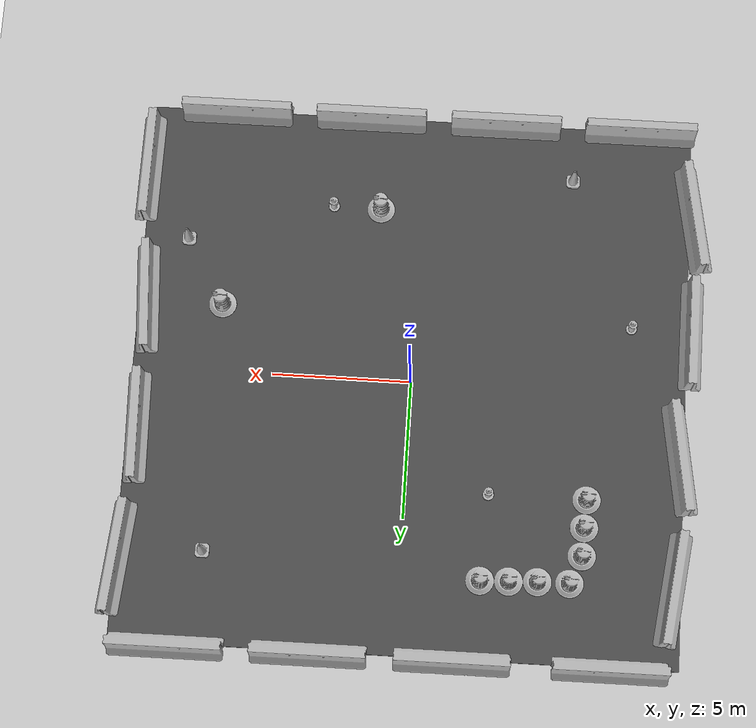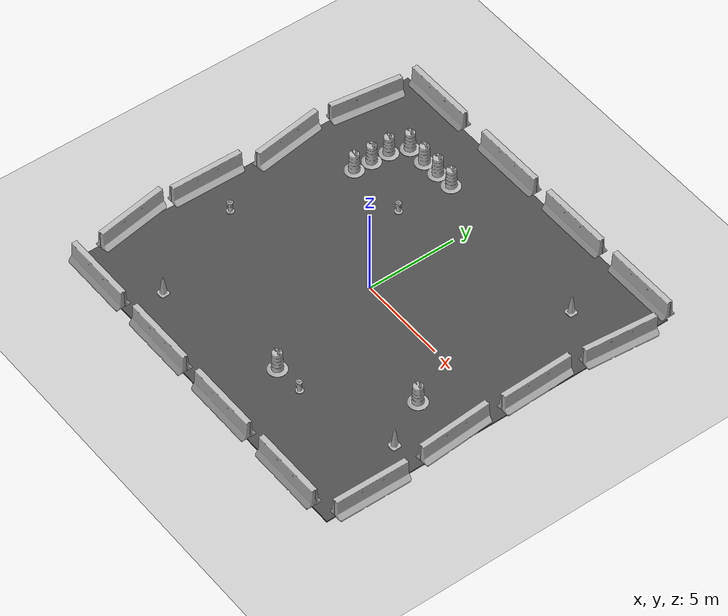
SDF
<sdf version="1.6">
 <world name="default">
  <light name="sun" type="directional">
   <pose>0 0 10 0 -0 0</pose>
   <diffuse>0.8 0.8 0.8 1</diffuse>
   <specular>0.2 0.2 0.2 1</specular>
   <attenuation>
    <range>1000</range>
    <constant>0.9</constant>
    <linear>0.01</linear>
    <quadratic>0.001</quadratic>
   </attenuation>
   <direction>-0.5 0.1 -0.9</direction>
  </light>
  <model name="ground_plane">
   <static>1</static>
   <link name="link">
    <collision name="collision">
     <geometry><plane><normal>0 0 1</normal><size>100 100</size></plane></geometry>
     <surface><friction><ode><mu>100</mu><mu2>50</mu2></ode></friction></surface>
    </collision>
    <visual name="visual">
     <cast_shadows>0</cast_shadows>
     <geometry><plane><normal>0 0 1</normal><size>100 100</size></plane></geometry>
     <material>
      <script><uri>file://media/materials/scripts/gazebo.material</uri><name>Gazebo/Grey</name></script>
     </material>
    </visual>
    <velocity_decay><linear>0</linear><angular>0</angular></velocity_decay>
   </link>
  </model>
  <physics name="default_physics" default="0" type="ode">
   <max_step_size>0.01</max_step_size>
   <real_time_factor>1</real_time_factor>
   <real_time_update_rate>100</real_time_update_rate>
  </physics>
  <scene><ambient>0.4 0.4 0.4 1</ambient><background>0.7 0.7 0.7 1</background><shadows>1</shadows></scene>
  <model name="jersey_barrier">
   <static>1</static>
   <link name="link">
    <visual name="visual">
     <geometry><mesh><uri>model://jersey_barrier/meshes/jersey_barrier.dae</uri></mesh></geometry>
    </visual>
    <collision name="upright">
     <pose>0 0 0.5715 0 -0 0</pose>
     <geometry><box><size>4.06542 0.3063 1.143</size></box></geometry>
    </collision>
    <collision name="base">
     <pose>0 0 0.032258 0 -0 0</pose>
     <geometry><box><size>4.06542 0.8107 0.064516</size></box></geometry>
    </collision>
    <collision name="base2">
     <pose>0 0 0.1 0 -0 0</pose>
     <geometry><box><size>4.06542 0.65 0.1</size></box></geometry>
    </collision>
    <collision name="base3">
     <pose>0 0 0.2 0 -0 0</pose>
     <geometry><box><size>4.06542 0.5 0.1</size></box></geometry>
    </collision>
    <collision name="left-angle">
     <pose>0 -0.224 0.2401 0.9 -0 0</pose>
     <geometry><box><size>4.06542 0.5 0.064516</size></box></geometry>
    </collision>
    <collision name="right-angle">
     <pose>0 0.224 0.2401 -0.9 0 0</pose>
     <geometry><box><size>4.06542 0.5 0.064516</size></box></geometry>
    </collision>
    <velocity_decay><linear>0</linear><angular>0</angular></velocity_decay>
   </link>
   <pose>-8 -10 0 0 -0 0</pose>
  </model>
  <model name="jersey_barrier_0">
   <static>1</static>
   <link name="link">
    <visual name="visual">
     <geometry><mesh><uri>model://jersey_barrier/meshes/jersey_barrier.dae</uri></mesh></geometry>
    </visual>
    <collision name="upright">
     <pose>0 0 0.5715 0 -0 0</pose>
     <geometry><box><size>4.06542 0.3063 1.143</size></box></geometry>
    </collision>
    <collision name="base">
     <pose>0 0 0.032258 0 -0 0</pose>
     <geometry><box><size>4.06542 0.8107 0.064516</size></box></geometry>
    </collision>
    <collision name="base2">
     <pose>0 0 0.1 0 -0 0</pose>
     <geometry><box><size>4.06542 0.65 0.1</size></box></geometry>
    </collision>
    <collision name="base3">
     <pose>0 0 0.2 0 -0 0</pose>
     <geometry><box><size>4.06542 0.5 0.1</size></box></geometry>
    </collision>
    <collision name="left-angle">
     <pose>0 -0.224 0.2401 0.9 -0 0</pose>
     <geometry><box><size>4.06542 0.5 0.064516</size></box></geometry>
    </collision>
    <collision name="right-angle">
     <pose>0 0.224 0.2401 -0.9 0 0</pose>
     <geometry><box><size>4.06542 0.5 0.064516</size></box></geometry>
    </collision>
    <velocity_decay><linear>0</linear><angular>0</angular></velocity_decay>
   </link>
   <pose>-3 -10 0 0 -0 0</pose>
  </model>
  <model name="jersey_barrier_1">
   <static>1</static>
   <link name="link">
    <visual name="visual">
     <geometry><mesh><uri>model://jersey_barrier/meshes/jersey_barrier.dae</uri></mesh></geometry>
    </visual>
    <collision name="upright">
     <pose>0 0 0.5715 0 -0 0</pose>
     <geometry><box><size>4.06542 0.3063 1.143</size></box></geometry>
    </collision>
    <collision name="base">
     <pose>0 0 0.032258 0 -0 0</pose>
     <geometry><box><size>4.06542 0.8107 0.064516</size></box></geometry>
    </collision>
    <collision name="base2">
     <pose>0 0 0.1 0 -0 0</pose>
     <geometry><box><size>4.06542 0.65 0.1</size></box></geometry>
    </collision>
    <collision name="base3">
     <pose>0 0 0.2 0 -0 0</pose>
     <geometry><box><size>4.06542 0.5 0.1</size></box></geometry>
    </collision>
    <collision name="left-angle">
     <pose>0 -0.224 0.2401 0.9 -0 0</pose>
     <geometry><box><size>4.06542 0.5 0.064516</size></box></geometry>
    </collision>
    <collision name="right-angle">
     <pose>0 0.224 0.2401 -0.9 0 0</pose>
     <geometry><box><size>4.06542 0.5 0.064516</size></box></geometry>
    </collision>
    <velocity_decay><linear>0</linear><angular>0</angular></velocity_decay>
   </link>
   <pose>2 -10 0 0 -0 0</pose>
  </model>
  <model name="jersey_barrier_2">
   <static>1</static>
   <link name="link">
    <visual name="visual">
     <geometry><mesh><uri>model://jersey_barrier/meshes/jersey_barrier.dae</uri></mesh></geometry>
    </visual>
    <collision name="upright">
     <pose>0 0 0.5715 0 -0 0</pose>
     <geometry><box><size>4.06542 0.3063 1.143</size></box></geometry>
    </collision>
    <collision name="base">
     <pose>0 0 0.032258 0 -0 0</pose>
     <geometry><box><size>4.06542 0.8107 0.064516</size></box></geometry>
    </collision>
    <collision name="base2">
     <pose>0 0 0.1 0 -0 0</pose>
     <geometry><box><size>4.06542 0.65 0.1</size></box></geometry>
    </collision>
    <collision name="base3">
     <pose>0 0 0.2 0 -0 0</pose>
     <geometry><box><size>4.06542 0.5 0.1</size></box></geometry>
    </collision>
    <collision name="left-angle">
     <pose>0 -0.224 0.2401 0.9 -0 0</pose>
     <geometry><box><size>4.06542 0.5 0.064516</size></box></geometry>
    </collision>
    <collision name="right-angle">
     <pose>0 0.224 0.2401 -0.9 0 0</pose>
     <geometry><box><size>4.06542 0.5 0.064516</size></box></geometry>
    </collision>
    <velocity_decay><linear>0</linear><angular>0</angular></velocity_decay>
   </link>
   <pose>7 -10 0 0 -0 0</pose>
  </model>
  <model name="jersey_barrier_3">
   <static>1</static>
   <link name="link">
    <visual name="visual">
     <geometry><mesh><uri>model://jersey_barrier/meshes/jersey_barrier.dae</uri></mesh></geometry>
    </visual>
    <collision name="upright">
     <pose>0 0 0.5715 0 -0 0</pose>
     <geometry><box><size>4.06542 0.3063 1.143</size></box></geometry>
    </collision>
    <collision name="base">
     <pose>0 0 0.032258 0 -0 0</pose>
     <geometry><box><size>4.06542 0.8107 0.064516</size></box></geometry>
    </collision>
    <collision name="base2">
     <pose>0 0 0.1 0 -0 0</pose>
     <geometry><box><size>4.06542 0.65 0.1</size></box></geometry>
    </collision>
    <collision name="base3">
     <pose>0 0 0.2 0 -0 0</pose>
     <geometry><box><size>4.06542 0.5 0.1</size></box></geometry>
    </collision>
    <collision name="left-angle">
     <pose>0 -0.224 0.2401 0.9 -0 0</pose>
     <geometry><box><size>4.06542 0.5 0.064516</size></box></geometry>
    </collision>
    <collision name="right-angle">
     <pose>0 0.224 0.2401 -0.9 0 0</pose>
     <geometry><box><size>4.06542 0.5 0.064516</size></box></geometry>
    </collision>
    <velocity_decay><linear>0</linear><angular>0</angular></velocity_decay>
   </link>
   <pose>-7.50675 10 0 0 -0 0</pose>
  </model>
  <model name="jersey_barrier_4">
   <static>1</static>
   <link name="link">
    <visual name="visual">
     <geometry><mesh><uri>model://jersey_barrier/meshes/jersey_barrier.dae</uri></mesh></geometry>
    </visual>
    <collision name="upright">
     <pose>0 0 0.5715 0 -0 0</pose>
     <geometry><box><size>4.06542 0.3063 1.143</size></box></geometry>
    </collision>
    <collision name="base">
     <pose>0 0 0.032258 0 -0 0</pose>
     <geometry><box><size>4.06542 0.8107 0.064516</size></box></geometry>
    </collision>
    <collision name="base2">
     <pose>0 0 0.1 0 -0 0</pose>
     <geometry><box><size>4.06542 0.65 0.1</size></box></geometry>
    </collision>
    <collision name="base3">
     <pose>0 0 0.2 0 -0 0</pose>
     <geometry><box><size>4.06542 0.5 0.1</size></box></geometry>
    </collision>
    <collision name="left-angle">
     <pose>0 -0.224 0.2401 0.9 -0 0</pose>
     <geometry><box><size>4.06542 0.5 0.064516</size></box></geometry>
    </collision>
    <collision name="right-angle">
     <pose>0 0.224 0.2401 -0.9 0 0</pose>
     <geometry><box><size>4.06542 0.5 0.064516</size></box></geometry>
    </collision>
    <velocity_decay><linear>0</linear><angular>0</angular></velocity_decay>
   </link>
   <pose>-2 10 0 0 -0 0</pose>
  </model>
  <model name="jersey_barrier_5">
   <static>1</static>
   <link name="link">
    <visual name="visual">
     <geometry><mesh><uri>model://jersey_barrier/meshes/jersey_barrier.dae</uri></mesh></geometry>
    </visual>
    <collision name="upright">
     <pose>0 0 0.5715 0 -0 0</pose>
     <geometry><box><size>4.06542 0.3063 1.143</size></box></geometry>
    </collision>
    <collision name="base">
     <pose>0 0 0.032258 0 -0 0</pose>
     <geometry><box><size>4.06542 0.8107 0.064516</size></box></geometry>
    </collision>
    <collision name="base2">
     <pose>0 0 0.1 0 -0 0</pose>
     <geometry><box><size>4.06542 0.65 0.1</size></box></geometry>
    </collision>
    <collision name="base3">
     <pose>0 0 0.2 0 -0 0</pose>
     <geometry><box><size>4.06542 0.5 0.1</size></box></geometry>
    </collision>
    <collision name="left-angle">
     <pose>0 -0.224 0.2401 0.9 -0 0</pose>
     <geometry><box><size>4.06542 0.5 0.064516</size></box></geometry>
    </collision>
    <collision name="right-angle">
     <pose>0 0.224 0.2401 -0.9 0 0</pose>
     <geometry><box><size>4.06542 0.5 0.064516</size></box></geometry>
    </collision>
    <velocity_decay><linear>0</linear><angular>0</angular></velocity_decay>
   </link>
   <pose>3 10 0 0 -0 0</pose>
  </model>
  <model name="jersey_barrier_6">
   <static>1</static>
   <link name="link">
    <visual name="visual">
     <geometry><mesh><uri>model://jersey_barrier/meshes/jersey_barrier.dae</uri></mesh></geometry>
    </visual>
    <collision name="upright">
     <pose>0 0 0.5715 0 -0 0</pose>
     <geometry><box><size>4.06542 0.3063 1.143</size></box></geometry>
    </collision>
    <collision name="base">
     <pose>0 0 0.032258 0 -0 0</pose>
     <geometry><box><size>4.06542 0.8107 0.064516</size></box></geometry>
    </collision>
    <collision name="base2">
     <pose>0 0 0.1 0 -0 0</pose>
     <geometry><box><size>4.06542 0.65 0.1</size></box></geometry>
    </collision>
    <collision name="base3">
     <pose>0 0 0.2 0 -0 0</pose>
     <geometry><box><size>4.06542 0.5 0.1</size></box></geometry>
    </collision>
    <collision name="left-angle">
     <pose>0 -0.224 0.2401 0.9 -0 0</pose>
     <geometry><box><size>4.06542 0.5 0.064516</size></box></geometry>
    </collision>
    <collision name="right-angle">
     <pose>0 0.224 0.2401 -0.9 0 0</pose>
     <geometry><box><size>4.06542 0.5 0.064516</size></box></geometry>
    </collision>
    <velocity_decay><linear>0</linear><angular>0</angular></velocity_decay>
   </link>
   <pose>8 10 0 0 -0 0</pose>
  </model>
  <model name="jersey_barrier_7">
   <static>1</static>
   <link name="link">
    <visual name="visual">
     <geometry><mesh><uri>model://jersey_barrier/meshes/jersey_barrier.dae</uri></mesh></geometry>
    </visual>
    <collision name="upright">
     <pose>0 0 0.5715 0 -0 0</pose>
     <geometry><box><size>4.06542 0.3063 1.143</size></box></geometry>
    </collision>
    <collision name="base">
     <pose>0 0 0.032258 0 -0 0</pose>
     <geometry><box><size>4.06542 0.8107 0.064516</size></box></geometry>
    </collision>
    <collision name="base2">
     <pose>0 0 0.1 0 -0 0</pose>
     <geometry><box><size>4.06542 0.65 0.1</size></box></geometry>
    </collision>
    <collision name="base3">
     <pose>0 0 0.2 0 -0 0</pose>
     <geometry><box><size>4.06542 0.5 0.1</size></box></geometry>
    </collision>
    <collision name="left-angle">
     <pose>0 -0.224 0.2401 0.9 -0 0</pose>
     <geometry><box><size>4.06542 0.5 0.064516</size></box></geometry>
    </collision>
    <collision name="right-angle">
     <pose>0 0.224 0.2401 -0.9 0 0</pose>
     <geometry><box><size>4.06542 0.5 0.064516</size></box></geometry>
    </collision>
    <velocity_decay><linear>0</linear><angular>0</angular></velocity_decay>
   </link>
   <pose>9.74902 -2.57759 0 0 -0 1.64</pose>
  </model>
  <model name="jersey_barrier_8">
   <static>1</static>
   <link name="link">
    <visual name="visual">
     <geometry><mesh><uri>model://jersey_barrier/meshes/jersey_barrier.dae</uri></mesh></geometry>
    </visual>
    <collision name="upright">
     <pose>0 0 0.5715 0 -0 0</pose>
     <geometry><box><size>4.06542 0.3063 1.143</size></box></geometry>
    </collision>
    <collision name="base">
     <pose>0 0 0.032258 0 -0 0</pose>
     <geometry><box><size>4.06542 0.8107 0.064516</size></box></geometry>
    </collision>
    <collision name="base2">
     <pose>0 0 0.1 0 -0 0</pose>
     <geometry><box><size>4.06542 0.65 0.1</size></box></geometry>
    </collision>
    <collision name="base3">
     <pose>0 0 0.2 0 -0 0</pose>
     <geometry><box><size>4.06542 0.5 0.1</size></box></geometry>
    </collision>
    <collision name="left-angle">
     <pose>0 -0.224 0.2401 0.9 -0 0</pose>
     <geometry><box><size>4.06542 0.5 0.064516</size></box></geometry>
    </collision>
    <collision name="right-angle">
     <pose>0 0.224 0.2401 -0.9 0 0</pose>
     <geometry><box><size>4.06542 0.5 0.064516</size></box></geometry>
    </collision>
    <velocity_decay><linear>0</linear><angular>0</angular></velocity_decay>
   </link>
   <pose>9.70141 2.24369 0 0 -0 1.6</pose>
  </model>
  <model name="jersey_barrier_9">
   <static>1</static>
   <link name="link">
    <visual name="visual">
     <geometry><mesh><uri>model://jersey_barrier/meshes/jersey_barrier.dae</uri></mesh></geometry>
    </visual>
    <collision name="upright">
     <pose>0 0 0.5715 0 -0 0</pose>
     <geometry><box><size>4.06542 0.3063 1.143</size></box></geometry>
    </collision>
    <collision name="base">
     <pose>0 0 0.032258 0 -0 0</pose>
     <geometry><box><size>4.06542 0.8107 0.064516</size></box></geometry>
    </collision>
    <collision name="base2">
     <pose>0 0 0.1 0 -0 0</pose>
     <geometry><box><size>4.06542 0.65 0.1</size></box></geometry>
    </collision>
    <collision name="base3">
     <pose>0 0 0.2 0 -0 0</pose>
     <geometry><box><size>4.06542 0.5 0.1</size></box></geometry>
    </collision>
    <collision name="left-angle">
     <pose>0 -0.224 0.2401 0.9 -0 0</pose>
     <geometry><box><size>4.06542 0.5 0.064516</size></box></geometry>
    </collision>
    <collision name="right-angle">
     <pose>0 0.224 0.2401 -0.9 0 0</pose>
     <geometry><box><size>4.06542 0.5 0.064516</size></box></geometry>
    </collision>
    <velocity_decay><linear>0</linear><angular>0</angular></velocity_decay>
   </link>
   <pose>-10.0607 -6.69856 0 0 0 -1.4</pose>
  </model>
  <model name="jersey_barrier_10">
   <static>1</static>
   <link name="link">
    <visual name="visual">
     <geometry><mesh><uri>model://jersey_barrier/meshes/jersey_barrier.dae</uri></mesh></geometry>
    </visual>
    <collision name="upright">
     <pose>0 0 0.5715 0 -0 0</pose>
     <geometry><box><size>4.06542 0.3063 1.143</size></box></geometry>
    </collision>
    <collision name="base">
     <pose>0 0 0.032258 0 -0 0</pose>
     <geometry><box><size>4.06542 0.8107 0.064516</size></box></geometry>
    </collision>
    <collision name="base2">
     <pose>0 0 0.1 0 -0 0</pose>
     <geometry><box><size>4.06542 0.65 0.1</size></box></geometry>
    </collision>
    <collision name="base3">
     <pose>0 0 0.2 0 -0 0</pose>
     <geometry><box><size>4.06542 0.5 0.1</size></box></geometry>
    </collision>
    <collision name="left-angle">
     <pose>0 -0.224 0.2401 0.9 -0 0</pose>
     <geometry><box><size>4.06542 0.5 0.064516</size></box></geometry>
    </collision>
    <collision name="right-angle">
     <pose>0 0.224 0.2401 -0.9 0 0</pose>
     <geometry><box><size>4.06542 0.5 0.064516</size></box></geometry>
    </collision>
    <velocity_decay><linear>0</linear><angular>0</angular></velocity_decay>
   </link>
   <pose>-10.0774 -2.27159 0 0 -0 1.56</pose>
  </model>
  <model name="jersey_barrier_11">
   <static>1</static>
   <link name="link">
    <visual name="visual">
     <geometry><mesh><uri>model://jersey_barrier/meshes/jersey_barrier.dae</uri></mesh></geometry>
    </visual>
    <collision name="upright">
     <pose>0 0 0.5715 0 -0 0</pose>
     <geometry><box><size>4.06542 0.3063 1.143</size></box></geometry>
    </collision>
    <collision name="base">
     <pose>0 0 0.032258 0 -0 0</pose>
     <geometry><box><size>4.06542 0.8107 0.064516</size></box></geometry>
    </collision>
    <collision name="base2">
     <pose>0 0 0.1 0 -0 0</pose>
     <geometry><box><size>4.06542 0.65 0.1</size></box></geometry>
    </collision>
    <collision name="base3">
     <pose>0 0 0.2 0 -0 0</pose>
     <geometry><box><size>4.06542 0.5 0.1</size></box></geometry>
    </collision>
    <collision name="left-angle">
     <pose>0 -0.224 0.2401 0.9 -0 0</pose>
     <geometry><box><size>4.06542 0.5 0.064516</size></box></geometry>
    </collision>
    <collision name="right-angle">
     <pose>0 0.224 0.2401 -0.9 0 0</pose>
     <geometry><box><size>4.06542 0.5 0.064516</size></box></geometry>
    </collision>
    <velocity_decay><linear>0</linear><angular>0</angular></velocity_decay>
   </link>
   <pose>-9.77013 2.34791 0 0 -0 1.72</pose>
  </model>
  <model name="jersey_barrier_12">
   <static>1</static>
   <link name="link">
    <visual name="visual">
     <geometry><mesh><uri>model://jersey_barrier/meshes/jersey_barrier.dae</uri></mesh></geometry>
    </visual>
    <collision name="upright">
     <pose>0 0 0.5715 0 -0 0</pose>
     <geometry><box><size>4.06542 0.3063 1.143</size></box></geometry>
    </collision>
    <collision name="base">
     <pose>0 0 0.032258 0 -0 0</pose>
     <geometry><box><size>4.06542 0.8107 0.064516</size></box></geometry>
    </collision>
    <collision name="base2">
     <pose>0 0 0.1 0 -0 0</pose>
     <geometry><box><size>4.06542 0.65 0.1</size></box></geometry>
    </collision>
    <collision name="base3">
     <pose>0 0 0.2 0 -0 0</pose>
     <geometry><box><size>4.06542 0.5 0.1</size></box></geometry>
    </collision>
    <collision name="left-angle">
     <pose>0 -0.224 0.2401 0.9 -0 0</pose>
     <geometry><box><size>4.06542 0.5 0.064516</size></box></geometry>
    </collision>
    <collision name="right-angle">
     <pose>0 0.224 0.2401 -0.9 0 0</pose>
     <geometry><box><size>4.06542 0.5 0.064516</size></box></geometry>
    </collision>
    <velocity_decay><linear>0</linear><angular>0</angular></velocity_decay>
   </link>
   <pose>10.0879 -7.62159 0 0 -0 1.56</pose>
  </model>
  <model name="jersey_barrier_13">
   <static>1</static>
   <link name="link">
    <visual name="visual">
     <geometry><mesh><uri>model://jersey_barrier/meshes/jersey_barrier.dae</uri></mesh></geometry>
    </visual>
    <collision name="upright">
     <pose>0 0 0.5715 0 -0 0</pose>
     <geometry><box><size>4.06542 0.3063 1.143</size></box></geometry>
    </collision>
    <collision name="base">
     <pose>0 0 0.032258 0 -0 0</pose>
     <geometry><box><size>4.06542 0.8107 0.064516</size></box></geometry>
    </collision>
    <collision name="base2">
     <pose>0 0 0.1 0 -0 0</pose>
     <geometry><box><size>4.06542 0.65 0.1</size></box></geometry>
    </collision>
    <collision name="base3">
     <pose>0 0 0.2 0 -0 0</pose>
     <geometry><box><size>4.06542 0.5 0.1</size></box></geometry>
    </collision>
    <collision name="left-angle">
     <pose>0 -0.224 0.2401 0.9 -0 0</pose>
     <geometry><box><size>4.06542 0.5 0.064516</size></box></geometry>
    </collision>
    <collision name="right-angle">
     <pose>0 0.224 0.2401 -0.9 0 0</pose>
     <geometry><box><size>4.06542 0.5 0.064516</size></box></geometry>
    </collision>
    <velocity_decay><linear>0</linear><angular>0</angular></velocity_decay>
   </link>
   <pose>10 7 0 0 -0 1.48</pose>
  </model>
  <model name="jersey_barrier_14">
   <static>1</static>
   <link name="link">
    <visual name="visual">
     <geometry><mesh><uri>model://jersey_barrier/meshes/jersey_barrier.dae</uri></mesh></geometry>
    </visual>
    <collision name="upright">
     <pose>0 0 0.5715 0 -0 0</pose>
     <geometry><box><size>4.06542 0.3063 1.143</size></box></geometry>
    </collision>
    <collision name="base">
     <pose>0 0 0.032258 0 -0 0</pose>
     <geometry><box><size>4.06542 0.8107 0.064516</size></box></geometry>
    </collision>
    <collision name="base2">
     <pose>0 0 0.1 0 -0 0</pose>
     <geometry><box><size>4.06542 0.65 0.1</size></box></geometry>
    </collision>
    <collision name="base3">
     <pose>0 0 0.2 0 -0 0</pose>
     <geometry><box><size>4.06542 0.5 0.1</size></box></geometry>
    </collision>
    <collision name="left-angle">
     <pose>0 -0.224 0.2401 0.9 -0 0</pose>
     <geometry><box><size>4.06542 0.5 0.064516</size></box></geometry>
    </collision>
    <collision name="right-angle">
     <pose>0 0.224 0.2401 -0.9 0 0</pose>
     <geometry><box><size>4.06542 0.5 0.064516</size></box></geometry>
    </collision>
    <velocity_decay><linear>0</linear><angular>0</angular></velocity_decay>
   </link>
   <pose>-9.64482 7.05946 0 0 -0 1.44</pose>
  </model>
  <model name="fire_hydrant">
   <static>1</static>
   <link name="link">
    <collision name="collision">
     <geometry><mesh><uri>model://fire_hydrant/meshes/fire_hydrant.dae</uri></mesh></geometry>
    </collision>
    <visual name="visual">
     <geometry><mesh><uri>model://fire_hydrant/meshes/fire_hydrant.dae</uri></mesh></geometry>
    </visual>
    <velocity_decay><linear>0</linear><angular>0</angular></velocity_decay>
   </link>
   <pose>3.18024 -6.51118 0 0 -0 0</pose>
  </model>
  <model name="fire_hydrant_0">
   <static>1</static>
   <link name="link">
    <collision name="collision">
     <geometry><mesh><uri>model://fire_hydrant/meshes/fire_hydrant.dae</uri></mesh></geometry>
    </collision>
    <visual name="visual">
     <geometry><mesh><uri>model://fire_hydrant/meshes/fire_hydrant.dae</uri></mesh></geometry>
    </visual>
    <velocity_decay><linear>0</linear><angular>0</angular></velocity_decay>
   </link>
   <pose>-3 4 0 0 -0 0</pose>
  </model>
  <model name="fire_hydrant_1">
   <static>1</static>
   <link name="link">
    <collision name="collision">
     <geometry><mesh><uri>model://fire_hydrant/meshes/fire_hydrant.dae</uri></mesh></geometry>
    </collision>
    <visual name="visual">
     <geometry><mesh><uri>model://fire_hydrant/meshes/fire_hydrant.dae</uri></mesh></geometry>
    </visual>
    <velocity_decay><linear>0</linear><angular>0</angular></velocity_decay>
   </link>
   <pose>-7.90686 -2.41363 0 0 -0 0</pose>
  </model>
  <model name="Construction Cone">
   <link name="link">
    <collision name="collision">
     <geometry>
      <mesh><scale>10 10 10</scale><uri>model://construction_cone/meshes/construction_cone.dae</uri></mesh>
     </geometry>
    </collision>
    <visual name="visual">
     <geometry>
      <mesh><scale>10 10 10</scale><uri>model://construction_cone/meshes/construction_cone.dae</uri></mesh>
     </geometry>
    </visual>
    <velocity_decay><linear>0</linear><angular>0</angular></velocity_decay>
    <inertial>
     <inertia><ixx>1</ixx><ixy>0</ixy><ixz>0</ixz><iyy>1</iyy><iyz>0</iyz><izz>1</izz></inertia>
     <mass>1</mass>
    </inertial>
   </link>
   <pose>-5.59121 -8 0.049946 -0.000244 -2.5e-05 0</pose>
   <static>0</static>
  </model>
  <model name="Construction Barrel">
   <link name="link">
    <inertial>
     <pose>0 0 0.4 0 -0 0</pose>
     <mass>500</mass>
     <inertia><ixx>51.2096</ixx><iyy>51.2096</iyy><izz>25</izz><ixy>0</ixy><ixz>0</ixz><iyz>0</iyz></inertia>
    </inertial>
    <collision name="collision">
     <geometry><mesh><uri>model://construction_barrel/meshes/construction_barrel.dae</uri></mesh></geometry>
    </collision>
    <visual name="visual">
     <geometry><mesh><uri>model://construction_barrel/meshes/construction_barrel.dae</uri></mesh></geometry>
    </visual>
    <velocity_decay><linear>0</linear><angular>0</angular></velocity_decay>
   </link>
   <pose>7.00006 -2.54634 0.049907 -0.000183 -0.000363 0.000387</pose>
   <static>0</static>
  </model>
  <model name="Construction Cone_0">
   <link name="link">
    <collision name="collision">
     <geometry>
      <mesh><scale>10 10 10</scale><uri>model://construction_cone/meshes/construction_cone.dae</uri></mesh>
     </geometry>
    </collision>
    <visual name="visual">
     <geometry>
      <mesh><scale>10 10 10</scale><uri>model://construction_cone/meshes/construction_cone.dae</uri></mesh>
     </geometry>
    </visual>
    <velocity_decay><linear>0</linear><angular>0</angular></velocity_decay>
    <inertial>
     <inertia><ixx>1</ixx><ixy>0</ixy><ixz>0</ixz><iyy>1</iyy><iyz>0</iyz><izz>1</izz></inertia>
     <mass>1</mass>
    </inertial>
   </link>
   <pose>6.99685 6.55732 0.05 0 -1e-06 -0.007012</pose>
   <static>0</static>
  </model>
  <model name="Construction Barrel_0">
   <link name="link">
    <inertial>
     <pose>0 0 0.4 0 -0 0</pose>
     <mass>500</mass>
     <inertia><ixx>51.2096</ixx><iyy>51.2096</iyy><izz>25</izz><ixy>0</ixy><ixz>0</ixz><iyz>0</iyz></inertia>
    </inertial>
    <collision name="collision">
     <geometry><mesh><uri>model://construction_barrel/meshes/construction_barrel.dae</uri></mesh></geometry>
    </collision>
    <visual name="visual">
     <geometry><mesh><uri>model://construction_barrel/meshes/construction_barrel.dae</uri></mesh></geometry>
    </visual>
    <velocity_decay><linear>0</linear><angular>0</angular></velocity_decay>
   </link>
   <pose>1.45178 -6.51127 0.049882 0.000474 -7e-06 2.4e-05</pose>
   <static>0</static>
  </model>
  <model name="asphalt_plane">
   <static>1</static>
   <link name="link">
    <collision name="collision"><geometry><box><size>20 20 0.1</size></box></geometry></collision>
    <visual name="visual">
     <cast_shadows>0</cast_shadows>
     <geometry><box><size>20 20 0.1</size></box></geometry>
     <material>
      <script>
       <uri>model://asphalt_plane/materials/scripts</uri>
       <uri>model://asphalt_plane/materials/textures</uri>
       <name>vrc/asphalt</name>
      </script>
     </material>
    </visual>
    <velocity_decay><linear>0</linear><angular>0</angular></velocity_decay>
   </link>
   <pose>0.076733 -0.110379 0 0 -0 0</pose>
  </model>
  <model name="Construction Barrel_1">
   <link name="link">
    <inertial>
     <pose>0 0 0.4 0 -0 0</pose>
     <mass>500</mass>
     <inertia><ixx>51.2096</ixx><iyy>51.2096</iyy><izz>25</izz><ixy>0</ixy><ixz>0</ixz><iyz>0</iyz></inertia>
    </inertial>
    <collision name="collision">
     <geometry><mesh><uri>model://construction_barrel/meshes/construction_barrel.dae</uri></mesh></geometry>
    </collision>
    <visual name="visual">
     <geometry><mesh><uri>model://construction_barrel/meshes/construction_barrel.dae</uri></mesh></geometry>
    </visual>
    <velocity_decay><linear>0</linear><angular>0</angular></velocity_decay>
   </link>
   <pose>-6.5048 3.98262 0.049892 -9.1e-05 -0.000412 -0.009607</pose>
   <static>0</static>
  </model>
  <model name="Construction Barrel_2">
   <link name="link">
    <inertial>
     <pose>0 0 0.4 0 -0 0</pose>
     <mass>500</mass>
     <inertia><ixx>51.2096</ixx><iyy>51.2096</iyy><izz>25</izz><ixy>0</ixy><ixz>0</ixz><iyz>0</iyz></inertia>
    </inertial>
    <collision name="collision">
     <geometry><mesh><uri>model://construction_barrel/meshes/construction_barrel.dae</uri></mesh></geometry>
    </collision>
    <visual name="visual">
     <geometry><mesh><uri>model://construction_barrel/meshes/construction_barrel.dae</uri></mesh></geometry>
    </visual>
    <velocity_decay><linear>0</linear><angular>0</angular></velocity_decay>
   </link>
   <pose>-6.45064 4.9964 0.049913 0.000387 -2.7e-05 0.06497</pose>
   <static>0</static>
  </model>
  <model name="Construction Barrel_3">
   <link name="link">
    <inertial>
     <pose>0 0 0.4 0 -0 0</pose>
     <mass>500</mass>
     <inertia><ixx>51.2096</ixx><iyy>51.2096</iyy><izz>25</izz><ixy>0</ixy><ixz>0</ixz><iyz>0</iyz></inertia>
    </inertial>
    <collision name="collision">
     <geometry><mesh><uri>model://construction_barrel/meshes/construction_barrel.dae</uri></mesh></geometry>
    </collision>
    <visual name="visual">
     <geometry><mesh><uri>model://construction_barrel/meshes/construction_barrel.dae</uri></mesh></geometry>
    </visual>
    <velocity_decay><linear>0</linear><angular>0</angular></velocity_decay>
   </link>
   <pose>-6.40172 6.01111 0.049928 0.000333 5.5e-05 -0.120727</pose>
   <static>0</static>
  </model>
  <model name="Construction Barrel_4">
   <link name="link">
    <inertial>
     <pose>0 0 0.4 0 -0 0</pose>
     <mass>500</mass>
     <inertia><ixx>51.2096</ixx><iyy>51.2096</iyy><izz>25</izz><ixy>0</ixy><ixz>0</ixz><iyz>0</iyz></inertia>
    </inertial>
    <collision name="collision">
     <geometry><mesh><uri>model://construction_barrel/meshes/construction_barrel.dae</uri></mesh></geometry>
    </collision>
    <visual name="visual">
     <geometry><mesh><uri>model://construction_barrel/meshes/construction_barrel.dae</uri></mesh></geometry>
    </visual>
    <velocity_decay><linear>0</linear><angular>0</angular></velocity_decay>
   </link>
   <pose>-6.00632 7.00882 0.049905 -8.5e-05 -0.000403 -0.049568</pose>
   <static>0</static>
  </model>
  <model name="Construction Barrel_5">
   <link name="link">
    <inertial>
     <pose>0 0 0.4 0 -0 0</pose>
     <mass>500</mass>
     <inertia><ixx>51.2096</ixx><iyy>51.2096</iyy><izz>25</izz><ixy>0</ixy><ixz>0</ixz><iyz>0</iyz></inertia>
    </inertial>
    <collision name="collision">
     <geometry><mesh><uri>model://construction_barrel/meshes/construction_barrel.dae</uri></mesh></geometry>
    </collision>
    <visual name="visual">
     <geometry><mesh><uri>model://construction_barrel/meshes/construction_barrel.dae</uri></mesh></geometry>
    </visual>
    <velocity_decay><linear>0</linear><angular>0</angular></velocity_decay>
   </link>
   <pose>-4.8757 7.00814 0.049997 -4.7e-05 -0.00014 0.146169</pose>
   <static>0</static>
  </model>
  <model name="Construction Barrel_6">
   <link name="link">
    <inertial>
     <pose>0 0 0.4 0 -0 0</pose>
     <mass>500</mass>
     <inertia><ixx>51.2096</ixx><iyy>51.2096</iyy><izz>25</izz><ixy>0</ixy><ixz>0</ixz><iyz>0</iyz></inertia>
    </inertial>
    <collision name="collision">
     <geometry><mesh><uri>model://construction_barrel/meshes/construction_barrel.dae</uri></mesh></geometry>
    </collision>
    <visual name="visual">
     <geometry><mesh><uri>model://construction_barrel/meshes/construction_barrel.dae</uri></mesh></geometry>
    </visual>
    <velocity_decay><linear>0</linear><angular>0</angular></velocity_decay>
   </link>
   <pose>-3.8604 7.04832 0.049875 0.000428 0.000141 0.031696</pose>
   <static>0</static>
  </model>
  <model name="Construction Barrel_7">
   <link name="link">
    <inertial>
     <pose>0 0 0.4 0 -0 0</pose>
     <mass>500</mass>
     <inertia><ixx>51.2096</ixx><iyy>51.2096</iyy><izz>25</izz><ixy>0</ixy><ixz>0</ixz><iyz>0</iyz></inertia>
    </inertial>
    <collision name="collision">
     <geometry><mesh><uri>model://construction_barrel/meshes/construction_barrel.dae</uri></mesh></geometry>
    </collision>
    <visual name="visual">
     <geometry><mesh><uri>model://construction_barrel/meshes/construction_barrel.dae</uri></mesh></geometry>
    </visual>
    <velocity_decay><linear>0</linear><angular>0</angular></velocity_decay>
   </link>
   <pose>-2.84355 7.07582 0.049822 0.000653 7.8e-05 0.070622</pose>
   <static>0</static>
  </model>
  <model name="Construction Cone_1">
   <link name="link">
    <collision name="collision">
     <geometry>
      <mesh><scale>10 10 10</scale><uri>model://construction_cone/meshes/construction_cone.dae</uri></mesh>
     </geometry>
    </collision>
    <visual name="visual">
     <geometry>
      <mesh><scale>10 10 10</scale><uri>model://construction_cone/meshes/construction_cone.dae</uri></mesh>
     </geometry>
    </visual>
    <velocity_decay><linear>0</linear><angular>0</angular></velocity_decay>
    <inertial>
     <inertia><ixx>1</ixx><ixy>0</ixy><ixz>0</ixz><iyy>1</iyy><iyz>0</iyz><izz>1</izz></inertia>
     <mass>1</mass>
    </inertial>
   </link>
   <pose>8.42887 -5 0.049946 -0.000244 -2.5e-05 0</pose>
   <static>0</static>
  </model>
  <gravity>0 0 -9.8</gravity>
  <magnetic_field>6e-06 2.3e-05 -4.2e-05</magnetic_field>
  <atmosphere type="adiabatic"/>
  <audio><device>default</device></audio>
  <spherical_coordinates>
   <surface_model>EARTH_WGS84</surface_model>
   <latitude_deg>0</latitude_deg>
   <longitude_deg>0</longitude_deg>
   <elevation>0</elevation>
   <heading_deg>0</heading_deg>
  </spherical_coordinates>
 </world>
</sdf>
